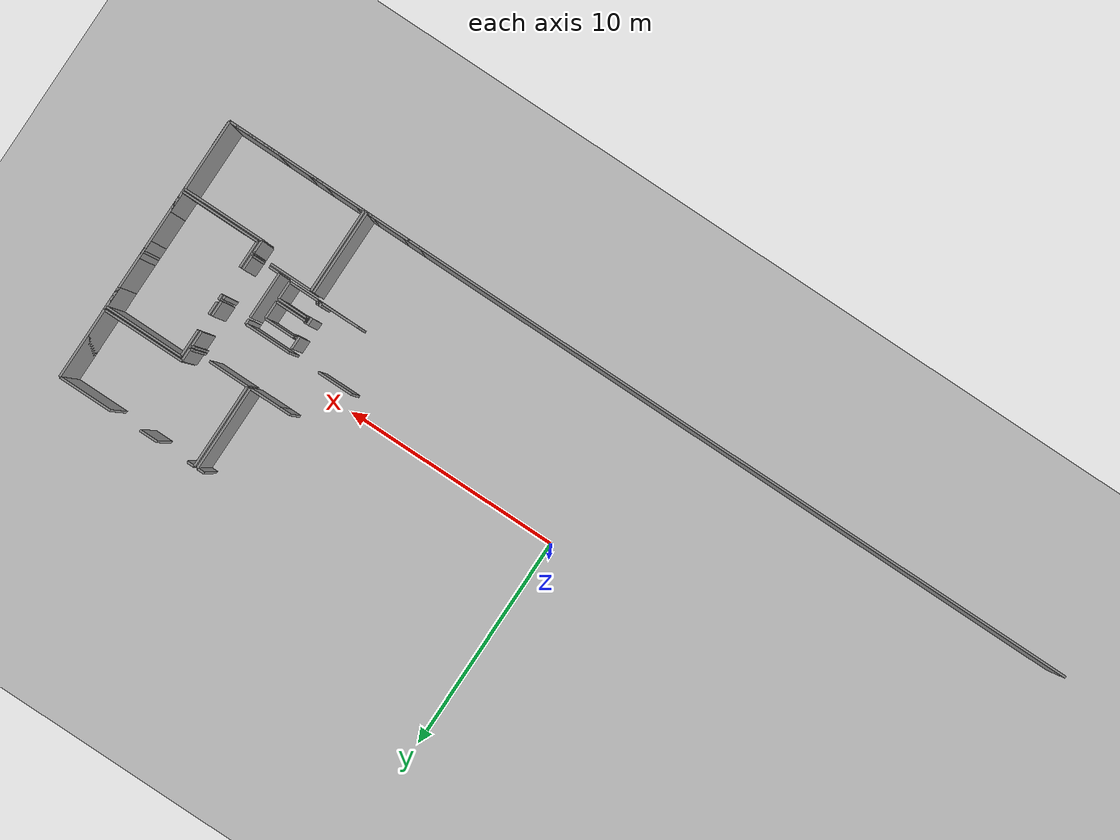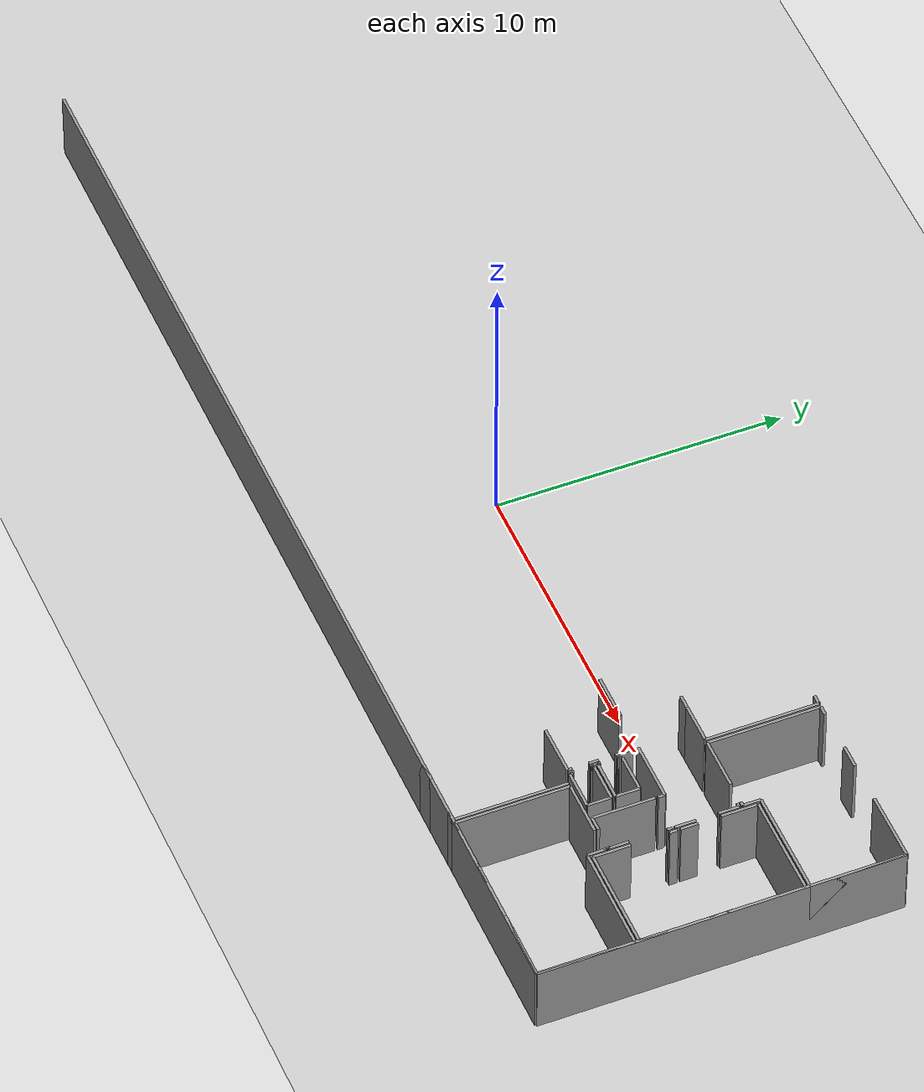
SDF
<sdf version="1.6">
 <world name="default">
  <model name="ground_plane">
   <static>1</static>
   <link name="link">
    <collision name="collision">
     <geometry><plane><normal>0 0 1</normal><size>100 100</size></plane></geometry>
     <surface><friction><ode><mu>100</mu><mu2>50</mu2></ode></friction></surface>
    </collision>
    <visual name="visual">
     <cast_shadows>0</cast_shadows>
     <geometry><plane><normal>0 0 1</normal><size>100 100</size></plane></geometry>
     <material>
      <script><uri>file://media/materials/scripts/gazebo.material</uri><name>Gazebo/Grey</name></script>
     </material>
    </visual>
   </link>
  </model>
  <model name="0510025537_Layout1_PLAN2">
   <static>1</static>
   <link name="Wall_142">
    <collision name="Wall_142_Collision">
     <geometry><box><size>3.88136239436 0.1 2.5</size></box></geometry>
     <pose>1.94068119718 0 1.25 0 0 0</pose>
    </collision>
    <visual name="Wall_142_Visual">
     <pose>1.94068119718 0 1.25 0 0 0</pose>
     <geometry><box><size>3.88136239436 0.1 2.5</size></box></geometry>
     <material>
      <script><uri>file://media/materials/scripts/gazebo.material</uri><name>Gazebo/Grey</name></script>
      <ambient>1 1 1 1</ambient>
     </material>
    </visual>
    <pose>33.8367541463 -8.49402681578 0 0 0 -1.57079632679</pose>
   </link>
   <link name="Wall_143">
    <collision name="Wall_143_Collision">
     <geometry><box><size>0.347334307683 0.1 2.5</size></box></geometry>
     <pose>0.173667153841 0 1.25 0 0 0</pose>
    </collision>
    <visual name="Wall_143_Visual">
     <pose>0.173667153841 0 1.25 0 0 0</pose>
     <geometry><box><size>0.347334307683 0.1 2.5</size></box></geometry>
     <material>
      <script><uri>file://media/materials/scripts/gazebo.material</uri><name>Gazebo/Grey</name></script>
      <ambient>1 1 1 1</ambient>
     </material>
    </visual>
    <pose>33.8367541463 -12.3753892101 0 0 0 3.14159265359</pose>
   </link>
   <link name="Wall_144">
    <collision name="Wall_144_Collision">
     <geometry><box><size>0.825633856516 0.1 2.5</size></box></geometry>
     <pose>0.412816928258 0 1.25 0 0 0</pose>
    </collision>
    <visual name="Wall_144_Visual">
     <pose>0.412816928258 0 1.25 0 0 0</pose>
     <geometry><box><size>0.825633856516 0.1 2.5</size></box></geometry>
     <material>
      <script><uri>file://media/materials/scripts/gazebo.material</uri><name>Gazebo/Grey</name></script>
      <ambient>1 1 1 1</ambient>
     </material>
    </visual>
    <pose>32.0388892419 -12.3753892101 0 0 0 3.14159265359</pose>
   </link>
   <link name="Wall_161">
    <collision name="Wall_161_Collision">
     <geometry><box><size>1.37306983542 0.1 2.5</size></box></geometry>
     <pose>0.68653491771 0 1.25 0 0 0</pose>
    </collision>
    <visual name="Wall_161_Visual">
     <pose>0.68653491771 0 1.25 0 0 0</pose>
     <geometry><box><size>1.37306983542 0.1 2.5</size></box></geometry>
     <material>
      <script><uri>file://media/materials/scripts/gazebo.material</uri><name>Gazebo/Grey</name></script>
      <ambient>1 1 1 1</ambient>
     </material>
    </visual>
    <pose>33.5063862235 -6.54861155239 0 0 0 0.0</pose>
   </link>
   <link name="Wall_162">
    <collision name="Wall_162_Collision">
     <geometry><box><size>0.816356357629 0.1 2.5</size></box></geometry>
     <pose>0.408178178814 0 1.25 0 0 0</pose>
    </collision>
    <visual name="Wall_162_Visual">
     <pose>0.408178178814 0 1.25 0 0 0</pose>
     <geometry><box><size>0.816356357629 0.1 2.5</size></box></geometry>
     <material>
      <script><uri>file://media/materials/scripts/gazebo.material</uri><name>Gazebo/Grey</name></script>
      <ambient>1 1 1 1</ambient>
     </material>
    </visual>
    <pose>34.879456059 -6.54861155239 0 0 0 -1.57079632679</pose>
   </link>
   <link name="Wall_163">
    <collision name="Wall_163_Collision">
     <geometry><box><size>1.37472199276 0.1 2.5</size></box></geometry>
     <pose>0.687360996378 0 1.25 0 0 0</pose>
    </collision>
    <visual name="Wall_163_Visual">
     <pose>0.687360996378 0 1.25 0 0 0</pose>
     <geometry><box><size>1.37472199276 0.1 2.5</size></box></geometry>
     <material>
      <script><uri>file://media/materials/scripts/gazebo.material</uri><name>Gazebo/Grey</name></script>
      <ambient>1 1 1 1</ambient>
     </material>
    </visual>
    <pose>34.879456059 -7.36496791002 0 0 0 3.14159265359</pose>
   </link>
   <link name="Wall_164">
    <collision name="Wall_164_Collision">
     <geometry><box><size>0.0310732668234 0.1 2.5</size></box></geometry>
     <pose>0.0155366334117 0 1.25 0 0 0</pose>
    </collision>
    <visual name="Wall_164_Visual">
     <pose>0.0155366334117 0 1.25 0 0 0</pose>
     <geometry><box><size>0.0310732668234 0.1 2.5</size></box></geometry>
     <material>
      <script><uri>file://media/materials/scripts/gazebo.material</uri><name>Gazebo/Grey</name></script>
      <ambient>1 1 1 1</ambient>
     </material>
    </visual>
    <pose>33.5047340662 -7.36496791002 0 0 0 1.57079632679</pose>
   </link>
   <link name="Wall_165">
    <collision name="Wall_165_Collision">
     <geometry><box><size>0.0454343267459 0.1 2.5</size></box></geometry>
     <pose>0.0227171633729 0 1.25 0 0 0</pose>
    </collision>
    <visual name="Wall_165_Visual">
     <pose>0.0227171633729 0 1.25 0 0 0</pose>
     <geometry><box><size>0.0454343267459 0.1 2.5</size></box></geometry>
     <material>
      <script><uri>file://media/materials/scripts/gazebo.material</uri><name>Gazebo/Grey</name></script>
      <ambient>1 1 1 1</ambient>
     </material>
    </visual>
    <pose>33.5047340662 -7.3338946432 0 0 0 3.14159265359</pose>
   </link>
   <link name="Wall_166">
    <collision name="Wall_166_Collision">
     <geometry><box><size>0.0644976806253 0.1 2.5</size></box></geometry>
     <pose>0.0322488403126 0 1.25 0 0 0</pose>
    </collision>
    <visual name="Wall_166_Visual">
     <pose>0.0322488403126 0 1.25 0 0 0</pose>
     <geometry><box><size>0.0644976806253 0.1 2.5</size></box></geometry>
     <material>
      <script><uri>file://media/materials/scripts/gazebo.material</uri><name>Gazebo/Grey</name></script>
      <ambient>1 1 1 1</ambient>
     </material>
    </visual>
    <pose>33.4592997395 -7.3338946432 0 0 0 1.57079632679</pose>
   </link>
   <link name="Wall_167">
    <collision name="Wall_167_Collision">
     <geometry><box><size>0.0415581114571 0.1 2.5</size></box></geometry>
     <pose>0.0207790557285 0 1.25 0 0 0</pose>
    </collision>
    <visual name="Wall_167_Visual">
     <pose>0.0207790557285 0 1.25 0 0 0</pose>
     <geometry><box><size>0.0415581114571 0.1 2.5</size></box></geometry>
     <material>
      <script><uri>file://media/materials/scripts/gazebo.material</uri><name>Gazebo/Grey</name></script>
      <ambient>1 1 1 1</ambient>
     </material>
    </visual>
    <pose>33.4592997395 -6.69857660291 0 0 0 1.57079632679</pose>
   </link>
   <link name="Wall_168">
    <collision name="Wall_168_Collision">
     <geometry><box><size>0.0426383681769 0.1 2.5</size></box></geometry>
     <pose>0.0213191840885 0 1.25 0 0 0</pose>
    </collision>
    <visual name="Wall_168_Visual">
     <pose>0.0213191840885 0 1.25 0 0 0</pose>
     <geometry><box><size>0.0426383681769 0.1 2.5</size></box></geometry>
     <material>
      <script><uri>file://media/materials/scripts/gazebo.material</uri><name>Gazebo/Grey</name></script>
      <ambient>1 1 1 1</ambient>
     </material>
    </visual>
    <pose>33.4592997395 -6.65701849145 0 0 0 0.0</pose>
   </link>
   <link name="Wall_169">
    <collision name="Wall_169_Collision">
     <geometry><box><size>0.108498157457 0.1 2.5</size></box></geometry>
     <pose>0.0542490787287 0 1.25 0 0 0</pose>
    </collision>
    <visual name="Wall_169_Visual">
     <pose>0.0542490787287 0 1.25 0 0 0</pose>
     <geometry><box><size>0.108498157457 0.1 2.5</size></box></geometry>
     <material>
      <script><uri>file://media/materials/scripts/gazebo.material</uri><name>Gazebo/Grey</name></script>
      <ambient>1 1 1 1</ambient>
     </material>
    </visual>
    <pose>33.5019381076 -6.65701849145 0 0 0 1.52978767749</pose>
   </link>
   <link name="Wall_170">
    <collision name="Wall_170_Collision">
     <geometry><box><size>1.36449132617 0.1 2.5</size></box></geometry>
     <pose>0.682245663087 0 1.25 0 0 0</pose>
    </collision>
    <visual name="Wall_170_Visual">
     <pose>0.682245663087 0 1.25 0 0 0</pose>
     <geometry><box><size>1.36449132617 0.1 2.5</size></box></geometry>
     <material>
      <script><uri>file://media/materials/scripts/gazebo.material</uri><name>Gazebo/Grey</name></script>
      <ambient>1 1 1 1</ambient>
     </material>
    </visual>
    <pose>33.5139480206 -7.5019698799 0 0 0 0.0</pose>
   </link>
   <link name="Wall_171">
    <collision name="Wall_171_Collision">
     <geometry><box><size>0.822011819279 0.1 2.5</size></box></geometry>
     <pose>0.41100590964 0 1.25 0 0 0</pose>
    </collision>
    <visual name="Wall_171_Visual">
     <pose>0.41100590964 0 1.25 0 0 0</pose>
     <geometry><box><size>0.822011819279 0.1 2.5</size></box></geometry>
     <material>
      <script><uri>file://media/materials/scripts/gazebo.material</uri><name>Gazebo/Grey</name></script>
      <ambient>1 1 1 1</ambient>
     </material>
    </visual>
    <pose>34.8784393468 -7.5019698799 0 0 0 -1.57079632679</pose>
   </link>
   <link name="Wall_172">
    <collision name="Wall_172_Collision">
     <geometry><box><size>1.36487259325 0.1 2.5</size></box></geometry>
     <pose>0.682436296626 0 1.25 0 0 0</pose>
    </collision>
    <visual name="Wall_172_Visual">
     <pose>0.682436296626 0 1.25 0 0 0</pose>
     <geometry><box><size>1.36487259325 0.1 2.5</size></box></geometry>
     <material>
      <script><uri>file://media/materials/scripts/gazebo.material</uri><name>Gazebo/Grey</name></script>
      <ambient>1 1 1 1</ambient>
     </material>
    </visual>
    <pose>34.8784393468 -8.32398169918 0 0 0 3.14159265359</pose>
   </link>
   <link name="Wall_173">
    <collision name="Wall_173_Collision">
     <geometry><box><size>0.106373514647 0.1 2.5</size></box></geometry>
     <pose>0.0531867573235 0 1.25 0 0 0</pose>
    </collision>
    <visual name="Wall_173_Visual">
     <pose>0.0531867573235 0 1.25 0 0 0</pose>
     <geometry><box><size>0.106373514647 0.1 2.5</size></box></geometry>
     <material>
      <script><uri>file://media/materials/scripts/gazebo.material</uri><name>Gazebo/Grey</name></script>
      <ambient>1 1 1 1</ambient>
     </material>
    </visual>
    <pose>33.5135667535 -8.32398169918 0 0 0 1.57079632679</pose>
   </link>
   <link name="Wall_174">
    <collision name="Wall_174_Collision">
     <geometry><box><size>0.0630361568279 0.1 2.5</size></box></geometry>
     <pose>0.0315180784139 0 1.25 0 0 0</pose>
    </collision>
    <visual name="Wall_174_Visual">
     <pose>0.0315180784139 0 1.25 0 0 0</pose>
     <geometry><box><size>0.0630361568279 0.1 2.5</size></box></geometry>
     <material>
      <script><uri>file://media/materials/scripts/gazebo.material</uri><name>Gazebo/Grey</name></script>
      <ambient>1 1 1 1</ambient>
     </material>
    </visual>
    <pose>33.5135667535 -8.21760818453 0 0 0 3.14159265359</pose>
   </link>
   <link name="Wall_175">
    <collision name="Wall_175_Collision">
     <geometry><box><size>0.0568087945606 0.1 2.5</size></box></geometry>
     <pose>0.0284043972803 0 1.25 0 0 0</pose>
    </collision>
    <visual name="Wall_175_Visual">
     <pose>0.0284043972803 0 1.25 0 0 0</pose>
     <geometry><box><size>0.0568087945606 0.1 2.5</size></box></geometry>
     <material>
      <script><uri>file://media/materials/scripts/gazebo.material</uri><name>Gazebo/Grey</name></script>
      <ambient>1 1 1 1</ambient>
     </material>
    </visual>
    <pose>33.4505305967 -8.21760818453 0 0 0 1.57079632679</pose>
   </link>
   <link name="Wall_176">
    <collision name="Wall_176_Collision">
     <geometry><box><size>0.0498824426511 0.1 2.5</size></box></geometry>
     <pose>0.0249412213255 0 1.25 0 0 0</pose>
    </collision>
    <visual name="Wall_176_Visual">
     <pose>0.0249412213255 0 1.25 0 0 0</pose>
     <geometry><box><size>0.0498824426511 0.1 2.5</size></box></geometry>
     <material>
      <script><uri>file://media/materials/scripts/gazebo.material</uri><name>Gazebo/Grey</name></script>
      <ambient>1 1 1 1</ambient>
     </material>
    </visual>
    <pose>33.4505305967 -7.5953167694 0 0 0 1.57079632679</pose>
   </link>
   <link name="Wall_177">
    <collision name="Wall_177_Collision">
     <geometry><box><size>0.0585244964097 0.1 2.5</size></box></geometry>
     <pose>0.0292622482049 0 1.25 0 0 0</pose>
    </collision>
    <visual name="Wall_177_Visual">
     <pose>0.0292622482049 0 1.25 0 0 0</pose>
     <geometry><box><size>0.0585244964097 0.1 2.5</size></box></geometry>
     <material>
      <script><uri>file://media/materials/scripts/gazebo.material</uri><name>Gazebo/Grey</name></script>
      <ambient>1 1 1 1</ambient>
     </material>
    </visual>
    <pose>33.4505305967 -7.54543432675 0 0 0 0.0</pose>
   </link>
   <link name="Wall_178">
    <collision name="Wall_178_Collision">
     <geometry><box><size>0.0437389858024 0.1 2.5</size></box></geometry>
     <pose>0.0218694929012 0 1.25 0 0 0</pose>
    </collision>
    <visual name="Wall_178_Visual">
     <pose>0.0218694929012 0 1.25 0 0 0</pose>
     <geometry><box><size>0.0437389858024 0.1 2.5</size></box></geometry>
     <material>
      <script><uri>file://media/materials/scripts/gazebo.material</uri><name>Gazebo/Grey</name></script>
      <ambient>1 1 1 1</ambient>
     </material>
    </visual>
    <pose>33.5090550931 -7.54543432675 0 0 0 1.45869517914</pose>
   </link>
   <link name="Wall_181">
    <collision name="Wall_181_Collision">
     <geometry><box><size>0.585435597636 0.1 2.5</size></box></geometry>
     <pose>0.292717798818 0 1.25 0 0 0</pose>
    </collision>
    <visual name="Wall_181_Visual">
     <pose>0.292717798818 0 1.25 0 0 0</pose>
     <geometry><box><size>0.585435597636 0.1 2.5</size></box></geometry>
     <material>
      <script><uri>file://media/materials/scripts/gazebo.material</uri><name>Gazebo/Grey</name></script>
      <ambient>1 1 1 1</ambient>
     </material>
    </visual>
    <pose>33.3286522209 -6.12515091822 0 0 0 -1.57079632679</pose>
   </link>
   <link name="Wall_182">
    <collision name="Wall_182_Collision">
     <geometry><box><size>0.33297324776 0.1 2.5</size></box></geometry>
     <pose>0.16648662388 0 1.25 0 0 0</pose>
    </collision>
    <visual name="Wall_182_Visual">
     <pose>0.16648662388 0 1.25 0 0 0</pose>
     <geometry><box><size>0.33297324776 0.1 2.5</size></box></geometry>
     <material>
      <script><uri>file://media/materials/scripts/gazebo.material</uri><name>Gazebo/Grey</name></script>
      <ambient>1 1 1 1</ambient>
     </material>
    </visual>
    <pose>33.3286522209 -7.27562432484 0 0 0 -1.57079632679</pose>
   </link>
   <link name="Wall_183">
    <collision name="Wall_183_Collision">
     <geometry><box><size>0.154667344475 0.1 2.5</size></box></geometry>
     <pose>0.0773336722374 0 1.25 0 0 0</pose>
    </collision>
    <visual name="Wall_183_Visual">
     <pose>0.0773336722374 0 1.25 0 0 0</pose>
     <geometry><box><size>0.154667344475 0.1 2.5</size></box></geometry>
     <material>
      <script><uri>file://media/materials/scripts/gazebo.material</uri><name>Gazebo/Grey</name></script>
      <ambient>1 1 1 1</ambient>
     </material>
    </visual>
    <pose>33.3286522209 -8.16728093029 0 0 0 -1.57079632679</pose>
   </link>
   <link name="Wall_184">
    <collision name="Wall_184_Collision">
     <geometry><box><size>1.7687043938 0.1 2.5</size></box></geometry>
     <pose>0.884352196902 0 1.25 0 0 0</pose>
    </collision>
    <visual name="Wall_184_Visual">
     <pose>0.884352196902 0 1.25 0 0 0</pose>
     <geometry><box><size>1.7687043938 0.1 2.5</size></box></geometry>
     <material>
      <script><uri>file://media/materials/scripts/gazebo.material</uri><name>Gazebo/Grey</name></script>
      <ambient>1 1 1 1</ambient>
     </material>
    </visual>
    <pose>33.3286522209 -8.32194827477 0 0 0 -3.13889811387</pose>
   </link>
   <link name="Wall_185">
    <collision name="Wall_185_Collision">
     <geometry><box><size>3.87157653937 0.1 2.5</size></box></geometry>
     <pose>1.93578826968 0 1.25 0 0 0</pose>
    </collision>
    <visual name="Wall_185_Visual">
     <pose>1.93578826968 0 1.25 0 0 0</pose>
     <geometry><box><size>3.87157653937 0.1 2.5</size></box></geometry>
     <material>
      <script><uri>file://media/materials/scripts/gazebo.material</uri><name>Gazebo/Grey</name></script>
      <ambient>1 1 1 1</ambient>
     </material>
    </visual>
    <pose>33.9689902777 -12.3734828748 0 0 0 1.57079632679</pose>
   </link>
   <link name="Wall_186">
    <collision name="Wall_186_Collision">
     <geometry><box><size>1.94725805427 0.1 2.5</size></box></geometry>
     <pose>0.973629027134 0 1.25 0 0 0</pose>
    </collision>
    <visual name="Wall_186_Visual">
     <pose>0.973629027134 0 1.25 0 0 0</pose>
     <geometry><box><size>1.94725805427 0.1 2.5</size></box></geometry>
     <material>
      <script><uri>file://media/materials/scripts/gazebo.material</uri><name>Gazebo/Grey</name></script>
      <ambient>1 1 1 1</ambient>
     </material>
    </visual>
    <pose>33.9689902777 -8.50190633539 0 0 0 0.0</pose>
   </link>
   <link name="Wall_187">
    <collision name="Wall_187_Collision">
     <geometry><box><size>0.0495647200864 0.1 2.5</size></box></geometry>
     <pose>0.0247823600432 0 1.25 0 0 0</pose>
    </collision>
    <visual name="Wall_187_Visual">
     <pose>0.0247823600432 0 1.25 0 0 0</pose>
     <geometry><box><size>0.0495647200864 0.1 2.5</size></box></geometry>
     <material>
      <script><uri>file://media/materials/scripts/gazebo.material</uri><name>Gazebo/Grey</name></script>
      <ambient>1 1 1 1</ambient>
     </material>
    </visual>
    <pose>36.6872974519 -8.50190633539 0 0 0 0.0</pose>
   </link>
   <link name="Wall_188">
    <collision name="Wall_188_Collision">
     <geometry><box><size>0.600559191714 0.1 2.5</size></box></geometry>
     <pose>0.300279595857 0 1.25 0 0 0</pose>
    </collision>
    <visual name="Wall_188_Visual">
     <pose>0.300279595857 0 1.25 0 0 0</pose>
     <geometry><box><size>0.600559191714 0.1 2.5</size></box></geometry>
     <material>
      <script><uri>file://media/materials/scripts/gazebo.material</uri><name>Gazebo/Grey</name></script>
      <ambient>1 1 1 1</ambient>
     </material>
    </visual>
    <pose>36.736862172 -8.50190633539 0 0 0 -1.57079632679</pose>
   </link>
   <link name="Wall_189">
    <collision name="Wall_189_Collision">
     <geometry><box><size>3.74016648662 0.1 2.5</size></box></geometry>
     <pose>1.87008324331 0 1.25 0 0 0</pose>
    </collision>
    <visual name="Wall_189_Visual">
     <pose>1.87008324331 0 1.25 0 0 0</pose>
     <geometry><box><size>3.74016648662 0.1 2.5</size></box></geometry>
     <material>
      <script><uri>file://media/materials/scripts/gazebo.material</uri><name>Gazebo/Grey</name></script>
      <ambient>1 1 1 1</ambient>
     </material>
    </visual>
    <pose>36.736862172 -9.1024655271 0 0 0 0.0</pose>
   </link>
   <link name="Wall_190">
    <collision name="Wall_190_Collision">
     <geometry><box><size>3.27279659401 0.1 2.5</size></box></geometry>
     <pose>1.63639829701 0 1.25 0 0 0</pose>
    </collision>
    <visual name="Wall_190_Visual">
     <pose>1.63639829701 0 1.25 0 0 0</pose>
     <geometry><box><size>3.27279659401 0.1 2.5</size></box></geometry>
     <material>
      <script><uri>file://media/materials/scripts/gazebo.material</uri><name>Gazebo/Grey</name></script>
      <ambient>1 1 1 1</ambient>
     </material>
    </visual>
    <pose>40.4770286586 -9.1024655271 0 0 0 -1.57079632679</pose>
   </link>
   <link name="Wall_191">
    <collision name="Wall_191_Collision">
     <geometry><box><size>2.4663531804 0.1 2.5</size></box></geometry>
     <pose>1.2331765902 0 1.25 0 0 0</pose>
    </collision>
    <visual name="Wall_191_Visual">
     <pose>1.2331765902 0 1.25 0 0 0</pose>
     <geometry><box><size>2.4663531804 0.1 2.5</size></box></geometry>
     <material>
      <script><uri>file://media/materials/scripts/gazebo.material</uri><name>Gazebo/Grey</name></script>
      <ambient>1 1 1 1</ambient>
     </material>
    </visual>
    <pose>40.4770286586 -12.3752621211 0 0 0 3.14159265359</pose>
   </link>
   <link name="Wall_192">
    <collision name="Wall_192_Collision">
     <geometry><box><size>0.820550295482 0.1 2.5</size></box></geometry>
     <pose>0.410275147741 0 1.25 0 0 0</pose>
    </collision>
    <visual name="Wall_192_Visual">
     <pose>0.410275147741 0 1.25 0 0 0</pose>
     <geometry><box><size>0.820550295482 0.1 2.5</size></box></geometry>
     <material>
      <script><uri>file://media/materials/scripts/gazebo.material</uri><name>Gazebo/Grey</name></script>
      <ambient>1 1 1 1</ambient>
     </material>
    </visual>
    <pose>36.5932515727 -12.3752621211 0 0 0 3.14159265359</pose>
   </link>
   <link name="Wall_193">
    <collision name="Wall_193_Collision">
     <geometry><box><size>0.347720126896 0.1 2.5</size></box></geometry>
     <pose>0.173860063448 0 1.25 0 0 0</pose>
    </collision>
    <visual name="Wall_193_Visual">
     <pose>0.173860063448 0 1.25 0 0 0</pose>
     <geometry><box><size>0.347720126896 0.1 2.5</size></box></geometry>
     <material>
      <script><uri>file://media/materials/scripts/gazebo.material</uri><name>Gazebo/Grey</name></script>
      <ambient>1 1 1 1</ambient>
     </material>
    </visual>
    <pose>34.3167058524 -12.3752621211 0 0 0 3.13647573918</pose>
   </link>
   <link name="Wall_194">
    <collision name="Wall_194_Collision">
     <geometry><box><size>1.26872974519 0.1 2.5</size></box></geometry>
     <pose>0.634364872593 0 1.25 0 0 0</pose>
    </collision>
    <visual name="Wall_194_Visual">
     <pose>0.634364872593 0 1.25 0 0 0</pose>
     <geometry><box><size>1.26872974519 0.1 2.5</size></box></geometry>
     <material>
      <script><uri>file://media/materials/scripts/gazebo.material</uri><name>Gazebo/Grey</name></script>
      <ambient>1 1 1 1</ambient>
     </material>
    </visual>
    <pose>36.8726567961 -8.97219927559 0 0 0 1.57079632679</pose>
   </link>
   <link name="Wall_195">
    <collision name="Wall_195_Collision">
     <geometry><box><size>0.274702929402 0.1 2.5</size></box></geometry>
     <pose>0.137351464701 0 1.25 0 0 0</pose>
    </collision>
    <visual name="Wall_195_Visual">
     <pose>0.137351464701 0 1.25 0 0 0</pose>
     <geometry><box><size>0.274702929402 0.1 2.5</size></box></geometry>
     <material>
      <script><uri>file://media/materials/scripts/gazebo.material</uri><name>Gazebo/Grey</name></script>
      <ambient>1 1 1 1</ambient>
     </material>
    </visual>
    <pose>36.8726567961 -6.40474677512 0 0 0 1.57079632679</pose>
   </link>
   <link name="Wall_196">
    <collision name="Wall_196_Collision">
     <geometry><box><size>0.477981826269 0.1 2.5</size></box></geometry>
     <pose>0.238990913135 0 1.25 0 0 0</pose>
    </collision>
    <visual name="Wall_196_Visual">
     <pose>0.238990913135 0 1.25 0 0 0</pose>
     <geometry><box><size>0.477981826269 0.1 2.5</size></box></geometry>
     <material>
      <script><uri>file://media/materials/scripts/gazebo.material</uri><name>Gazebo/Grey</name></script>
      <ambient>1 1 1 1</ambient>
     </material>
    </visual>
    <pose>40.4802058842 -6.13004384571 0 0 0 -1.57079632679</pose>
   </link>
   <link name="Wall_197">
    <collision name="Wall_197_Collision">
     <geometry><box><size>0.944335006672 0.1 2.5</size></box></geometry>
     <pose>0.472167503336 0 1.25 0 0 0</pose>
    </collision>
    <visual name="Wall_197_Visual">
     <pose>0.472167503336 0 1.25 0 0 0</pose>
     <geometry><box><size>0.944335006672 0.1 2.5</size></box></geometry>
     <material>
      <script><uri>file://media/materials/scripts/gazebo.material</uri><name>Gazebo/Grey</name></script>
      <ambient>1 1 1 1</ambient>
     </material>
    </visual>
    <pose>40.4802058842 -8.02354324204 0 0 0 -1.57079632679</pose>
   </link>
   <link name="Wall_198">
    <collision name="Wall_198_Collision">
     <geometry><box><size>3.60755167594 0.1 2.5</size></box></geometry>
     <pose>1.80377583797 0 1.25 0 0 0</pose>
    </collision>
    <visual name="Wall_198_Visual">
     <pose>1.80377583797 0 1.25 0 0 0</pose>
     <geometry><box><size>3.60755167594 0.1 2.5</size></box></geometry>
     <material>
      <script><uri>file://media/materials/scripts/gazebo.material</uri><name>Gazebo/Grey</name></script>
      <ambient>1 1 1 1</ambient>
     </material>
    </visual>
    <pose>40.4802058842 -8.96787824871 0 0 0 -3.14039488061</pose>
   </link>
   <link name="Wall_199">
    <collision name="Wall_199_Collision">
     <geometry><box><size>2.13204549787 0.1 2.5</size></box></geometry>
     <pose>1.06602274894 0 1.25 0 0 0</pose>
    </collision>
    <visual name="Wall_199_Visual">
     <pose>1.06602274894 0 1.25 0 0 0</pose>
     <geometry><box><size>2.13204549787 0.1 2.5</size></box></geometry>
     <material>
      <script><uri>file://media/materials/scripts/gazebo.material</uri><name>Gazebo/Grey</name></script>
      <ambient>1 1 1 1</ambient>
     </material>
    </visual>
    <pose>35.4100527419 -8.38276037364 0 0 0 1.57079632679</pose>
   </link>
   <link name="Wall_200">
    <collision name="Wall_200_Collision">
     <geometry><box><size>0.173222342251 0.1 2.5</size></box></geometry>
     <pose>0.0866111711254 0 1.25 0 0 0</pose>
    </collision>
    <visual name="Wall_200_Visual">
     <pose>0.0866111711254 0 1.25 0 0 0</pose>
     <geometry><box><size>0.173222342251 0.1 2.5</size></box></geometry>
     <material>
      <script><uri>file://media/materials/scripts/gazebo.material</uri><name>Gazebo/Grey</name></script>
      <ambient>1 1 1 1</ambient>
     </material>
    </visual>
    <pose>36.7344474805 -6.25071487577 0 0 0 -1.57079632679</pose>
   </link>
   <link name="Wall_201">
    <collision name="Wall_201_Collision">
     <geometry><box><size>0.674969816356 0.1 2.5</size></box></geometry>
     <pose>0.337484908178 0 1.25 0 0 0</pose>
    </collision>
    <visual name="Wall_201_Visual">
     <pose>0.337484908178 0 1.25 0 0 0</pose>
     <geometry><box><size>0.674969816356 0.1 2.5</size></box></geometry>
     <material>
      <script><uri>file://media/materials/scripts/gazebo.material</uri><name>Gazebo/Grey</name></script>
      <ambient>1 1 1 1</ambient>
     </material>
    </visual>
    <pose>36.7344474805 -7.70416852005 0 0 0 -1.57079632679</pose>
   </link>
   <link name="Wall_202">
    <collision name="Wall_202_Collision">
     <geometry><box><size>0.0625913452373 0.1 2.5</size></box></geometry>
     <pose>0.0312956726187 0 1.25 0 0 0</pose>
    </collision>
    <visual name="Wall_202_Visual">
     <pose>0.0312956726187 0 1.25 0 0 0</pose>
     <geometry><box><size>0.0625913452373 0.1 2.5</size></box></geometry>
     <material>
      <script><uri>file://media/materials/scripts/gazebo.material</uri><name>Gazebo/Grey</name></script>
      <ambient>1 1 1 1</ambient>
     </material>
    </visual>
    <pose>36.7344474805 -8.3791383364 0 0 0 3.14159265359</pose>
   </link>
   <link name="Wall_203">
    <collision name="Wall_203_Collision">
     <geometry><box><size>0.494135407589 0.1 2.5</size></box></geometry>
     <pose>0.247067703795 0 1.25 0 0 0</pose>
    </collision>
    <visual name="Wall_203_Visual">
     <pose>0.247067703795 0 1.25 0 0 0</pose>
     <geometry><box><size>0.494135407589 0.1 2.5</size></box></geometry>
     <material>
      <script><uri>file://media/materials/scripts/gazebo.material</uri><name>Gazebo/Grey</name></script>
      <ambient>1 1 1 1</ambient>
     </material>
    </visual>
    <pose>35.9041748745 -8.3791383364 0 0 0 -3.13426253796</pose>
   </link>
   <link name="Wall_204">
    <collision name="Wall_204_Collision">
     <geometry><box><size>3.60697718752 0.1 2.5</size></box></geometry>
     <pose>1.80348859376 0 1.25 0 0 0</pose>
    </collision>
    <visual name="Wall_204_Visual">
     <pose>1.80348859376 0 1.25 0 0 0</pose>
     <geometry><box><size>3.60697718752 0.1 2.5</size></box></geometry>
     <material>
      <script><uri>file://media/materials/scripts/gazebo.material</uri><name>Gazebo/Grey</name></script>
      <ambient>1 1 1 1</ambient>
     </material>
    </visual>
    <pose>36.8744360424 -3.40150600496 0 0 0 0.0</pose>
   </link>
   <link name="Wall_205">
    <collision name="Wall_205_Collision">
     <geometry><box><size>0.955518840948 0.1 2.5</size></box></geometry>
     <pose>0.477759420474 0 1.25 0 0 0</pose>
    </collision>
    <visual name="Wall_205_Visual">
     <pose>0.477759420474 0 1.25 0 0 0</pose>
     <geometry><box><size>0.955518840948 0.1 2.5</size></box></geometry>
     <material>
      <script><uri>file://media/materials/scripts/gazebo.material</uri><name>Gazebo/Grey</name></script>
      <ambient>1 1 1 1</ambient>
     </material>
    </visual>
    <pose>40.48141323 -3.40150600496 0 0 0 -1.57079632679</pose>
   </link>
   <link name="Wall_206">
    <collision name="Wall_206_Collision">
     <geometry><box><size>0.268094300057 0.1 2.5</size></box></geometry>
     <pose>0.134047150029 0 1.25 0 0 0</pose>
    </collision>
    <visual name="Wall_206_Visual">
     <pose>0.134047150029 0 1.25 0 0 0</pose>
     <geometry><box><size>0.268094300057 0.1 2.5</size></box></geometry>
     <material>
      <script><uri>file://media/materials/scripts/gazebo.material</uri><name>Gazebo/Grey</name></script>
      <ambient>1 1 1 1</ambient>
     </material>
    </visual>
    <pose>40.48141323 -5.76542543051 0 0 0 -1.57079632679</pose>
   </link>
   <link name="Wall_207">
    <collision name="Wall_207_Collision">
     <geometry><box><size>0.59267967211 0.1 2.5</size></box></geometry>
     <pose>0.296339836055 0 1.25 0 0 0</pose>
    </collision>
    <visual name="Wall_207_Visual">
     <pose>0.296339836055 0 1.25 0 0 0</pose>
     <geometry><box><size>0.59267967211 0.1 2.5</size></box></geometry>
     <material>
      <script><uri>file://media/materials/scripts/gazebo.material</uri><name>Gazebo/Grey</name></script>
      <ambient>1 1 1 1</ambient>
     </material>
    </visual>
    <pose>36.8672555125 -6.03351973057 0 0 0 1.57079632679</pose>
   </link>
   <link name="Wall_208">
    <collision name="Wall_208_Collision">
     <geometry><box><size>1.26716147721 0.1 2.5</size></box></geometry>
     <pose>0.633580738607 0 1.25 0 0 0</pose>
    </collision>
    <visual name="Wall_208_Visual">
     <pose>0.633580738607 0 1.25 0 0 0</pose>
     <geometry><box><size>1.26716147721 0.1 2.5</size></box></geometry>
     <material>
      <script><uri>file://media/materials/scripts/gazebo.material</uri><name>Gazebo/Grey</name></script>
      <ambient>1 1 1 1</ambient>
     </material>
    </visual>
    <pose>36.8672555125 -4.66864713732 0 0 0 1.56512967064</pose>
   </link>
   <link name="Wall_209">
    <collision name="Wall_209_Collision">
     <geometry><box><size>3.86784647646 0.1 2.5</size></box></geometry>
     <pose>1.93392323823 0 1.25 0 0 0</pose>
    </collision>
    <visual name="Wall_209_Visual">
     <pose>1.93392323823 0 1.25 0 0 0</pose>
     <geometry><box><size>3.86784647646 0.1 2.5</size></box></geometry>
     <material>
      <script><uri>file://media/materials/scripts/gazebo.material</uri><name>Gazebo/Grey</name></script>
      <ambient>1 1 1 1</ambient>
     </material>
    </visual>
    <pose>33.9658765966 -3.868558175 0 0 0 1.57079632679</pose>
   </link>
   <link name="Wall_210">
    <collision name="Wall_210_Collision">
     <geometry><box><size>0.340217322234 0.1 2.5</size></box></geometry>
     <pose>0.170108661117 0 1.25 0 0 0</pose>
    </collision>
    <visual name="Wall_210_Visual">
     <pose>0.170108661117 0 1.25 0 0 0</pose>
     <geometry><box><size>0.340217322234 0.1 2.5</size></box></geometry>
     <material>
      <script><uri>file://media/materials/scripts/gazebo.material</uri><name>Gazebo/Grey</name></script>
      <ambient>1 1 1 1</ambient>
     </material>
    </visual>
    <pose>33.9658765966 -0.000711698544831 0 0 0 0.0</pose>
   </link>
   <link name="Wall_211">
    <collision name="Wall_211_Collision">
     <geometry><box><size>0.828938171189 0.1 2.5</size></box></geometry>
     <pose>0.414469085594 0 1.25 0 0 0</pose>
    </collision>
    <visual name="Wall_211_Visual">
     <pose>0.414469085594 0 1.25 0 0 0</pose>
     <geometry><box><size>0.828938171189 0.1 2.5</size></box></geometry>
     <material>
      <script><uri>file://media/materials/scripts/gazebo.material</uri><name>Gazebo/Grey</name></script>
      <ambient>1 1 1 1</ambient>
     </material>
    </visual>
    <pose>35.7606278198 -0.000711698544831 0 0 0 0.0</pose>
   </link>
   <link name="Wall_212">
    <collision name="Wall_212_Collision">
     <geometry><box><size>2.45205566499 0.1 2.5</size></box></geometry>
     <pose>1.2260278325 0 1.25 0 0 0</pose>
    </collision>
    <visual name="Wall_212_Visual">
     <pose>1.2260278325 0 1.25 0 0 0</pose>
     <geometry><box><size>2.45205566499 0.1 2.5</size></box></geometry>
     <material>
      <script><uri>file://media/materials/scripts/gazebo.material</uri><name>Gazebo/Grey</name></script>
      <ambient>1 1 1 1</ambient>
     </material>
    </visual>
    <pose>38.031835801 -0.000711698544831 0 0 0 0.0</pose>
   </link>
   <link name="Wall_213">
    <collision name="Wall_213_Collision">
     <geometry><box><size>3.26187964669 0.1 2.5</size></box></geometry>
     <pose>1.63093982335 0 1.25 0 0 0</pose>
    </collision>
    <visual name="Wall_213_Visual">
     <pose>1.63093982335 0 1.25 0 0 0</pose>
     <geometry><box><size>3.26187964669 0.1 2.5</size></box></geometry>
     <material>
      <script><uri>file://media/materials/scripts/gazebo.material</uri><name>Gazebo/Grey</name></script>
      <ambient>1 1 1 1</ambient>
     </material>
    </visual>
    <pose>40.483891466 -0.000711698544831 0 0 0 -1.57079632679</pose>
   </link>
   <link name="Wall_214">
    <collision name="Wall_214_Collision">
     <geometry><box><size>3.7508419648 0.1 2.5</size></box></geometry>
     <pose>1.8754209824 0 1.25 0 0 0</pose>
    </collision>
    <visual name="Wall_214_Visual">
     <pose>1.8754209824 0 1.25 0 0 0</pose>
     <geometry><box><size>3.7508419648 0.1 2.5</size></box></geometry>
     <material>
      <script><uri>file://media/materials/scripts/gazebo.material</uri><name>Gazebo/Grey</name></script>
      <ambient>1 1 1 1</ambient>
     </material>
    </visual>
    <pose>40.483891466 -3.26259134524 0 0 0 3.14159265359</pose>
   </link>
   <link name="Wall_215">
    <collision name="Wall_215_Collision">
     <geometry><box><size>0.606157463303 0.1 2.5</size></box></geometry>
     <pose>0.303078731652 0 1.25 0 0 0</pose>
    </collision>
    <visual name="Wall_215_Visual">
     <pose>0.303078731652 0 1.25 0 0 0</pose>
     <geometry><box><size>0.606157463303 0.1 2.5</size></box></geometry>
     <material>
      <script><uri>file://media/materials/scripts/gazebo.material</uri><name>Gazebo/Grey</name></script>
      <ambient>1 1 1 1</ambient>
     </material>
    </visual>
    <pose>36.7330495012 -3.26259134524 0 0 0 -1.57079632679</pose>
   </link>
   <link name="Wall_216">
    <collision name="Wall_216_Collision">
     <geometry><box><size>0.149456694414 0.1 2.5</size></box></geometry>
     <pose>0.0747283472072 0 1.25 0 0 0</pose>
    </collision>
    <visual name="Wall_216_Visual">
     <pose>0.0747283472072 0 1.25 0 0 0</pose>
     <geometry><box><size>0.149456694414 0.1 2.5</size></box></geometry>
     <material>
      <script><uri>file://media/materials/scripts/gazebo.material</uri><name>Gazebo/Grey</name></script>
      <ambient>1 1 1 1</ambient>
     </material>
    </visual>
    <pose>36.7330495012 -3.86874880854 0 0 0 3.14159265359</pose>
   </link>
   <link name="Wall_217">
    <collision name="Wall_217_Collision">
     <geometry><box><size>1.83859694704 0.1 2.5</size></box></geometry>
     <pose>0.919298473519 0 1.25 0 0 0</pose>
    </collision>
    <visual name="Wall_217_Visual">
     <pose>0.919298473519 0 1.25 0 0 0</pose>
     <geometry><box><size>1.83859694704 0.1 2.5</size></box></geometry>
     <material>
      <script><uri>file://media/materials/scripts/gazebo.material</uri><name>Gazebo/Grey</name></script>
      <ambient>1 1 1 1</ambient>
     </material>
    </visual>
    <pose>35.8044735337 -3.86874880854 0 0 0 3.14148896934</pose>
   </link>
   <link name="Wall_221">
    <collision name="Wall_221_Collision">
     <geometry><box><size>0.342377835674 0.1 2.5</size></box></geometry>
     <pose>0.171188917837 0 1.25 0 0 0</pose>
    </collision>
    <visual name="Wall_221_Visual">
     <pose>0.171188917837 0 1.25 0 0 0</pose>
     <geometry><box><size>0.342377835674 0.1 2.5</size></box></geometry>
     <material>
      <script><uri>file://media/materials/scripts/gazebo.material</uri><name>Gazebo/Grey</name></script>
      <ambient>1 1 1 1</ambient>
     </material>
    </visual>
    <pose>33.4800787952 -0.000991294401728 0 0 0 0.0</pose>
   </link>
   <link name="Wall_222">
    <collision name="Wall_222_Collision">
     <geometry><box><size>3.86915549342 0.1 2.5</size></box></geometry>
     <pose>1.93457774671 0 1.25 0 0 0</pose>
    </collision>
    <visual name="Wall_222_Visual">
     <pose>1.93457774671 0 1.25 0 0 0</pose>
     <geometry><box><size>3.86915549342 0.1 2.5</size></box></geometry>
     <material>
      <script><uri>file://media/materials/scripts/gazebo.material</uri><name>Gazebo/Grey</name></script>
      <ambient>1 1 1 1</ambient>
     </material>
    </visual>
    <pose>33.8224566309 -0.000991294401728 0 0 0 -1.57079632679</pose>
   </link>
   <link name="Wall_223">
    <collision name="Wall_223_Collision">
     <geometry><box><size>1.43458092394 0.1 2.5</size></box></geometry>
     <pose>0.717290461969 0 1.25 0 0 0</pose>
    </collision>
    <visual name="Wall_223_Visual">
     <pose>0.717290461969 0 1.25 0 0 0</pose>
     <geometry><box><size>1.43458092394 0.1 2.5</size></box></geometry>
     <material>
      <script><uri>file://media/materials/scripts/gazebo.material</uri><name>Gazebo/Grey</name></script>
      <ambient>1 1 1 1</ambient>
     </material>
    </visual>
    <pose>33.8224566309 -3.87014678782 0 0 0 3.14159265359</pose>
   </link>
   <link name="Wall_224">
    <collision name="Wall_224_Collision">
     <geometry><box><size>0.493740865476 0.1 2.5</size></box></geometry>
     <pose>0.246870432738 0 1.25 0 0 0</pose>
    </collision>
    <visual name="Wall_224_Visual">
     <pose>0.246870432738 0 1.25 0 0 0</pose>
     <geometry><box><size>0.493740865476 0.1 2.5</size></box></geometry>
     <material>
      <script><uri>file://media/materials/scripts/gazebo.material</uri><name>Gazebo/Grey</name></script>
      <ambient>1 1 1 1</ambient>
     </material>
    </visual>
    <pose>32.3878757069 -3.87014678782 0 0 0 3.14159265359</pose>
   </link>
   <link name="Wall_253">
    <collision name="Wall_253_Collision">
     <geometry><box><size>0.142720976044 0.1 2.5</size></box></geometry>
     <pose>0.0713604880219 0 1.25 0 0 0</pose>
    </collision>
    <visual name="Wall_253_Visual">
     <pose>0.0713604880219 0 1.25 0 0 0</pose>
     <geometry><box><size>0.142720976044 0.1 2.5</size></box></geometry>
     <material>
      <script><uri>file://media/materials/scripts/gazebo.material</uri><name>Gazebo/Grey</name></script>
      <ambient>1 1 1 1</ambient>
     </material>
    </visual>
    <pose>36.5926796721 -3.99545656733 0 0 0 0.0</pose>
   </link>
   <link name="Wall_254">
    <collision name="Wall_254_Collision">
     <geometry><box><size>0.702548134969 0.1 2.5</size></box></geometry>
     <pose>0.351274067484 0 1.25 0 0 0</pose>
    </collision>
    <visual name="Wall_254_Visual">
     <pose>0.351274067484 0 1.25 0 0 0</pose>
     <geometry><box><size>0.702548134969 0.1 2.5</size></box></geometry>
     <material>
      <script><uri>file://media/materials/scripts/gazebo.material</uri><name>Gazebo/Grey</name></script>
      <ambient>1 1 1 1</ambient>
     </material>
    </visual>
    <pose>36.7354006482 -3.99545656733 0 0 0 -1.57079632679</pose>
   </link>
   <link name="Wall_255">
    <collision name="Wall_255_Collision">
     <geometry><box><size>0.712397534473 0.1 2.5</size></box></geometry>
     <pose>0.356198767236 0 1.25 0 0 0</pose>
    </collision>
    <visual name="Wall_255_Visual">
     <pose>0.356198767236 0 1.25 0 0 0</pose>
     <geometry><box><size>0.712397534473 0.1 2.5</size></box></geometry>
     <material>
      <script><uri>file://media/materials/scripts/gazebo.material</uri><name>Gazebo/Grey</name></script>
      <ambient>1 1 1 1</ambient>
     </material>
    </visual>
    <pose>36.7354006482 -5.45189680371 0 0 0 -1.57079632679</pose>
   </link>
   <link name="Wall_256">
    <collision name="Wall_256_Collision">
     <geometry><box><size>0.230603037428 0.1 2.5</size></box></geometry>
     <pose>0.115301518714 0 1.25 0 0 0</pose>
    </collision>
    <visual name="Wall_256_Visual">
     <pose>0.115301518714 0 1.25 0 0 0</pose>
     <geometry><box><size>0.230603037428 0.1 2.5</size></box></geometry>
     <material>
      <script><uri>file://media/materials/scripts/gazebo.material</uri><name>Gazebo/Grey</name></script>
      <ambient>1 1 1 1</ambient>
     </material>
    </visual>
    <pose>35.415390481 -6.16429433818 0 0 0 1.57079632679</pose>
   </link>
   <link name="Wall_257">
    <collision name="Wall_257_Collision">
     <geometry><box><size>2.09175827667 0.1 2.5</size></box></geometry>
     <pose>1.04587913834 0 1.25 0 0 0</pose>
    </collision>
    <visual name="Wall_257_Visual">
     <pose>1.04587913834 0 1.25 0 0 0</pose>
     <geometry><box><size>2.09175827667 0.1 2.5</size></box></geometry>
     <material>
      <script><uri>file://media/materials/scripts/gazebo.material</uri><name>Gazebo/Grey</name></script>
      <ambient>1 1 1 1</ambient>
     </material>
    </visual>
    <pose>35.415390481 -5.93369130076 0 0 0 3.14159265359</pose>
   </link>
   <link name="Wall_258">
    <collision name="Wall_258_Collision">
     <geometry><box><size>1.63125119146 0.1 2.5</size></box></geometry>
     <pose>0.81562559573 0 1.25 0 0 0</pose>
    </collision>
    <visual name="Wall_258_Visual">
     <pose>0.81562559573 0 1.25 0 0 0</pose>
     <geometry><box><size>1.63125119146 0.1 2.5</size></box></geometry>
     <material>
      <script><uri>file://media/materials/scripts/gazebo.material</uri><name>Gazebo/Grey</name></script>
      <ambient>1 1 1 1</ambient>
     </material>
    </visual>
    <pose>31.9139607295 -5.93369130076 0 0 0 3.14159265359</pose>
   </link>
   <link name="Wall_279">
    <collision name="Wall_279_Collision">
     <geometry><box><size>12.3753892101 0.1 2.5</size></box></geometry>
     <pose>6.18769460507 0 1.25 0 0 0</pose>
    </collision>
    <visual name="Wall_279_Visual">
     <pose>6.18769460507 0 1.25 0 0 0</pose>
     <geometry><box><size>12.3753892101 0.1 2.5</size></box></geometry>
     <material>
      <script><uri>file://media/materials/scripts/gazebo.material</uri><name>Gazebo/Grey</name></script>
      <ambient>1 1 1 1</ambient>
     </material>
    </visual>
    <pose>40.483891466 -12.3753892101 0 0 0 1.57079632679</pose>
   </link>
   <link name="Wall_280">
    <collision name="Wall_280_Collision">
     <geometry><box><size>40.483891466 0.1 2.5</size></box></geometry>
     <pose>20.241945733 0 1.25 0 0 0</pose>
    </collision>
    <visual name="Wall_280_Visual">
     <pose>20.241945733 0 1.25 0 0 0</pose>
     <geometry><box><size>40.483891466 0.1 2.5</size></box></geometry>
     <material>
      <script><uri>file://media/materials/scripts/gazebo.material</uri><name>Gazebo/Grey</name></script>
      <ambient>1 1 1 1</ambient>
     </material>
    </visual>
    <pose>40.483891466 -12.3753892101 0 0 0 3.14159265359</pose>
   </link>
   <pose>-20.2 5.22538921014 0 0 0 0</pose>
  </model>
 </world>
</sdf>
